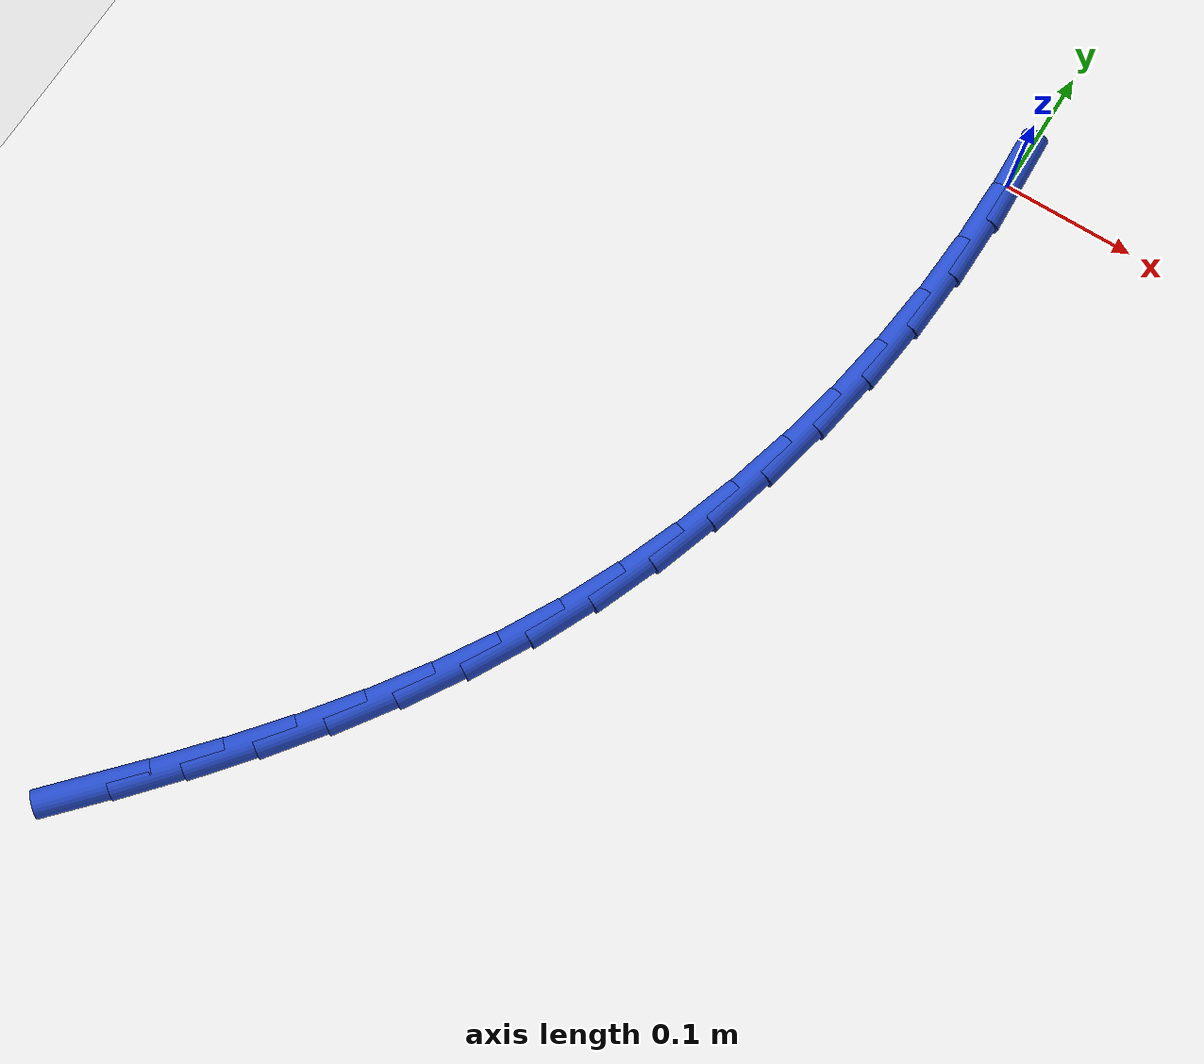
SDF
<sdf version="1.6">
 <world name="default">
  <model name="ground_plane">
   <static>1</static>
   <link name="link">
    <collision name="collision">
     <geometry><plane><normal>0 0 1</normal><size>100 100</size></plane></geometry>
     <surface><friction><ode><mu>100</mu><mu2>50</mu2></ode></friction></surface>
    </collision>
    <visual name="visual">
     <cast_shadows>0</cast_shadows>
     <geometry><plane><normal>0 0 1</normal><size>100 100</size></plane></geometry>
     <material>
      <script><uri>file://media/materials/scripts/gazebo.material</uri><name>Gazebo/WhiteGlow</name></script>
     </material>
    </visual>
   </link>
  </model>
  <model name="line">
   <link name="link_0">
    <pose>2.2551405187698492e-17 5.551115123125783e-17 0.01 0 1.57 -1.5392419877044776</pose>
    <collision name="collision">
     <geometry><cylinder><radius>0.01</radius><length>0.08</length></cylinder></geometry>
    </collision>
    <visual name="visual">
     <material>
      <script><name>Gazebo/Blue</name><uri>file://media/materials/scripts/gazebo.material</uri></script>
     </material>
     <geometry><cylinder><radius>0.01</radius><length>0.08</length></cylinder></geometry>
    </visual>
   </link>
   <link name="link_124">
    <pose>-0.3018439264929014 -0.7058427897785157 0.01 0 1.57 0.8227833614549639</pose>
    <collision name="collision">
     <geometry><cylinder><radius>0.01</radius><length>0.08</length></cylinder></geometry>
    </collision>
    <visual name="visual">
     <material>
      <script><name>Gazebo/Blue</name><uri>file://media/materials/scripts/gazebo.material</uri></script>
     </material>
     <geometry><cylinder><radius>0.01</radius><length>0.08</length></cylinder></geometry>
    </visual>
   </link>
   <link name="link_125">
    <pose>-0.26775076049522706 -0.6691001798175797 0.01 0 1.57 0.8492384544215957</pose>
    <collision name="collision">
     <geometry><cylinder><radius>0.01</radius><length>0.08</length></cylinder></geometry>
    </collision>
    <visual name="visual">
     <material>
      <script><name>Gazebo/Blue</name><uri>file://media/materials/scripts/gazebo.material</uri></script>
     </material>
     <geometry><cylinder><radius>0.01</radius><length>0.08</length></cylinder></geometry>
    </visual>
   </link>
   <link name="link_126">
    <pose>-0.23501532559732438 -0.631893547069669 0.01 0 1.57 0.8816998466891066</pose>
    <collision name="collision">
     <geometry><cylinder><radius>0.01</radius><length>0.08</length></cylinder></geometry>
    </collision>
    <visual name="visual">
     <material>
      <script><name>Gazebo/Blue</name><uri>file://media/materials/scripts/gazebo.material</uri></script>
     </material>
     <geometry><cylinder><radius>0.01</radius><length>0.08</length></cylinder></geometry>
    </visual>
   </link>
   <link name="link_127">
    <pose>-0.2038200469133435 -0.5940268472211532 0.01 0 1.57 0.9202164643158062</pose>
    <collision name="collision">
     <geometry><cylinder><radius>0.01</radius><length>0.08</length></cylinder></geometry>
    </collision>
    <visual name="visual">
     <material>
      <script><name>Gazebo/Blue</name><uri>file://media/materials/scripts/gazebo.material</uri></script>
     </material>
     <geometry><cylinder><radius>0.01</radius><length>0.08</length></cylinder></geometry>
    </visual>
   </link>
   <link name="link_128">
    <pose>-0.17434734955743267 -0.5553040359583992 0.01 0 1.57 0.9647220140647708</pose>
    <collision name="collision">
     <geometry><cylinder><radius>0.01</radius><length>0.08</length></cylinder></geometry>
    </collision>
    <visual name="visual">
     <material>
      <script><name>Gazebo/Blue</name><uri>file://media/materials/scripts/gazebo.material</uri></script>
     </material>
     <geometry><cylinder><radius>0.01</radius><length>0.08</length></cylinder></geometry>
    </visual>
   </link>
   <link name="link_129">
    <pose>-0.14677965864374096 -0.5155290689677754 0.01 0 1.57 1.0149928726349755</pose>
    <collision name="collision">
     <geometry><cylinder><radius>0.01</radius><length>0.08</length></cylinder></geometry>
    </collision>
    <visual name="visual">
     <material>
      <script><name>Gazebo/Blue</name><uri>file://media/materials/scripts/gazebo.material</uri></script>
     </material>
     <geometry><cylinder><radius>0.01</radius><length>0.08</length></cylinder></geometry>
    </visual>
   </link>
   <link name="link_130">
    <pose>-0.12129939928641716 -0.4745059019356491 0.01 0 1.57 1.0706085552267577</pose>
    <collision name="collision">
     <geometry><cylinder><radius>0.01</radius><length>0.08</length></cylinder></geometry>
    </collision>
    <visual name="visual">
     <material>
      <script><name>Gazebo/Blue</name><uri>file://media/materials/scripts/gazebo.material</uri></script>
     </material>
     <geometry><cylinder><radius>0.01</radius><length>0.08</length></cylinder></geometry>
    </visual>
   </link>
   <link name="link_131">
    <pose>-0.09808899434316425 -0.43203849554841395 0.01 0 1.57 1.1296773356762617</pose>
    <collision name="collision">
     <geometry><cylinder><radius>0.01</radius><length>0.08</length></cylinder></geometry>
    </collision>
    <visual name="visual">
     <material>
      <script><name>Gazebo/Blue</name><uri>file://media/materials/scripts/gazebo.material</uri></script>
     </material>
     <geometry><cylinder><radius>0.01</radius><length>0.08</length></cylinder></geometry>
    </visual>
   </link>
   <link name="link_132">
    <pose>-0.07729800692951683 -0.38800362392363713 0.01 0 1.57 1.187449845624131</pose>
    <collision name="collision">
     <geometry><cylinder><radius>0.01</radius><length>0.08</length></cylinder></geometry>
    </collision>
    <visual name="visual">
     <material>
      <script><name>Gazebo/Blue</name><uri>file://media/materials/scripts/gazebo.material</uri></script>
     </material>
     <geometry><cylinder><radius>0.01</radius><length>0.08</length></cylinder></geometry>
    </visual>
   </link>
   <link name="link_133">
    <pose>-0.05896033338360957 -0.34253436553123423 0.01 0 1.57 1.2431907692703672</pose>
    <collision name="collision">
     <geometry><cylinder><radius>0.01</radius><length>0.08</length></cylinder></geometry>
    </collision>
    <visual name="visual">
     <material>
      <script><name>Gazebo/Blue</name><uri>file://media/materials/scripts/gazebo.material</uri></script>
     </material>
     <geometry><cylinder><radius>0.01</radius><length>0.08</length></cylinder></geometry>
    </visual>
   </link>
   <link name="link_134">
    <pose>-0.043084433147597405 -0.29582016409393286 0.01 0 1.57 1.2972024268148916</pose>
    <collision name="collision">
     <geometry><cylinder><radius>0.01</radius><length>0.08</length></cylinder></geometry>
    </collision>
    <visual name="visual">
     <material>
      <script><name>Gazebo/Blue</name><uri>file://media/materials/scripts/gazebo.material</uri></script>
     </material>
     <geometry><cylinder><radius>0.01</radius><length>0.08</length></cylinder></geometry>
    </visual>
   </link>
   <link name="link_135">
    <pose>-0.029678765663635136 -0.24805046333445988 0.01 0 1.57 1.3497963986366517</pose>
    <collision name="collision">
     <geometry><cylinder><radius>0.01</radius><length>0.08</length></cylinder></geometry>
    </collision>
    <visual name="visual">
     <material>
      <script><name>Gazebo/Blue</name><uri>file://media/materials/scripts/gazebo.material</uri></script>
     </material>
     <geometry><cylinder><radius>0.01</radius><length>0.08</length></cylinder></geometry>
    </visual>
   </link>
   <link name="link_136">
    <pose>-0.018751790373878138 -0.1994147069755443 0.01 0 1.57 1.4012884508622738</pose>
    <collision name="collision">
     <geometry><cylinder><radius>0.01</radius><length>0.08</length></cylinder></geometry>
    </collision>
    <visual name="visual">
     <material>
      <script><name>Gazebo/Blue</name><uri>file://media/materials/scripts/gazebo.material</uri></script>
     </material>
     <geometry><cylinder><radius>0.01</radius><length>0.08</length></cylinder></geometry>
    </visual>
   </link>
   <link name="link_137">
    <pose>-0.01031196672048115 -0.15010233873991308 0.01 0 1.57 1.4519955932619852</pose>
    <collision name="collision">
     <geometry><cylinder><radius>0.01</radius><length>0.08</length></cylinder></geometry>
    </collision>
    <visual name="visual">
     <material>
      <script><name>Gazebo/Blue</name><uri>file://media/materials/scripts/gazebo.material</uri></script>
     </material>
     <geometry><cylinder><radius>0.01</radius><length>0.08</length></cylinder></geometry>
    </visual>
   </link>
   <link name="link_138">
    <pose>-0.004367754145599144 -0.10030280235029362 0.01 0 1.57 1.502234693839077</pose>
    <collision name="collision">
     <geometry><cylinder><radius>0.01</radius><length>0.08</length></cylinder></geometry>
    </collision>
    <visual name="visual">
     <material>
      <script><name>Gazebo/Blue</name><uri>file://media/materials/scripts/gazebo.material</uri></script>
     </material>
     <geometry><cylinder><radius>0.01</radius><length>0.08</length></cylinder></geometry>
    </visual>
   </link>
   <link name="link_139">
    <pose>-0.0009276120913870936 -0.05020554152941361 0.01 0 1.57 1.5523221398672882</pose>
    <collision name="collision">
     <geometry><cylinder><radius>0.01</radius><length>0.08</length></cylinder></geometry>
    </collision>
    <visual name="visual">
     <material>
      <script><name>Gazebo/Blue</name><uri>file://media/materials/scripts/gazebo.material</uri></script>
     </material>
     <geometry><cylinder><radius>0.01</radius><length>0.08</length></cylinder></geometry>
    </visual>
   </link>
  </model>
 </world>
</sdf>
